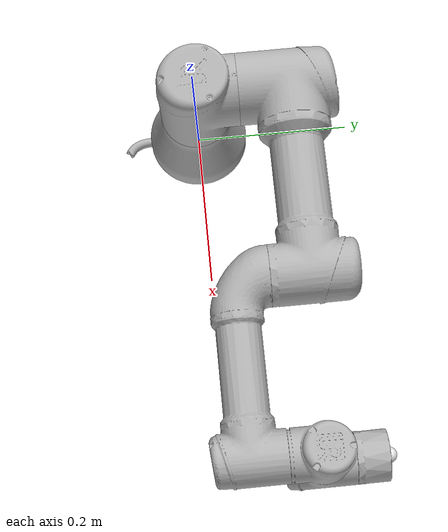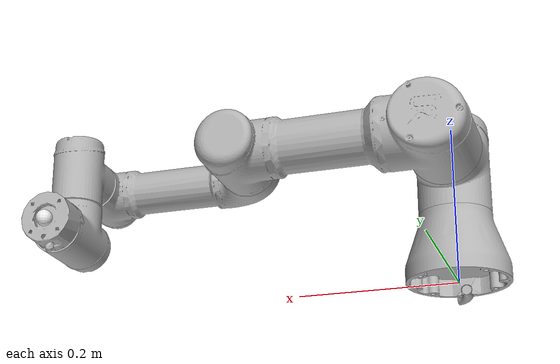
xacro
<?xml version="1.0"?>
<robot xmlns:controller="http://playerstage.sourceforge.net/gazebo/xmlschema/#controller"
        xmlns:interface="http://playerstage.sourceforge.net/gazebo/xmlschema/#interface"
        xmlns:xacro="http://wiki.ros.org/xacro"
        xmlns:sensor="http://playerstage.sourceforge.net/gazebo/xmlschema/#sensor"
        name="MiR200_UR5">

    <xacro:arg name="robot_name" default=''/>
    <xacro:arg name="tf_prefix" default=''/>
    <xacro:arg name="robot_namespace" default=''/>
    <xacro:arg name="transmission_hw_interface1" default="hardware_interface/PositionJointInterface"/>
    <xacro:arg name="transmission_hw_interface2" default="hardware_interface/VelocityJointInterface"/>

    <!--Include all needed urdf files-->

    <xacro:include filename="$(find cartesian_controller_examples)/urdf/ur5_robot.urdf.xacro">
        <xacro:arg name="tf_prefix" value="$(arg tf_prefix)"/>
    </xacro:include>

    <!--The position of the model was measured using laser scachild_frame="$(arg tf_prefix)wrist_3_link_ur5" nner. See Florian's master thesis-->

    <!--add force_torque sensor-->

    <!--Link to Gazebo library-->

   <!-- old -->
   <!-- new -->

    <gazebo>
      <plugin name="gazebo_ros_control" filename="libhwi_switch_gazebo_ros_control.so">
        <!--will be global namespace when not specified-->
        <controlPeriod>0.001</controlPeriod>
        <legacyModeNS>true</legacyModeNS>
      </plugin>
    </gazebo>

</robot>

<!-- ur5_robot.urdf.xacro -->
<!-- This file is needed so the moveit configurator is able to use the robot only (because the "xacro:ur5_robot" is searched) -->
<robot xmlns:xacro="http://wiki.ros.org/xacro"
       name="ur5" >

  <xacro:arg name="transmission_hw_interface1" default="hardware_interface/PositionJointInterface"/>
  <xacro:arg name="transmission_hw_interface2" default="hardware_interface/VelocityJointInterface"/>
  <xacro:arg name="tf_prefix" default=''/>

  <!-- common stuff -->

  <!-- include of the xacro file -->
  <xacro:include filename="$(find cartesian_controller_examples)/urdf/ur3.urdf.xacro" />

  <!-- arm -->
  <xacro:ur3_robot prefix="$(arg tf_prefix)" joint_limited="true" transmission_hw_interface1="$(arg transmission_hw_interface1)" transmission_hw_interface2="$(arg transmission_hw_interface2)"/>

</robot>

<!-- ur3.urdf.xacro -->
<robot xmlns:xacro="http://wiki.ros.org/xacro">

<!--
  Author: Felix Messmer
-->
 <xacro:include filename="$(find cartesian_controller_examples)/urdf/ur.transmission_switch.xacro" />
  <xacro:include filename="$(find cartesian_controller_examples)/urdf/ur.gazebo.xacro" />

   <xacro:macro name="cylinder_inertial" params="radius length mass *origin">
    <inertial>
      <mass value="${mass}" />
      <xacro:insert_block name="origin" />
      <inertia ixx="${0.0833333 * mass * (3 * radius * radius + length * length)}" ixy="0.0" ixz="0.0"
        iyy="${0.0833333 * mass * (3 * radius * radius + length * length)}" iyz="0.0"
        izz="${0.5 * mass * radius * radius}" />
    </inertial>
  </xacro:macro>

  <xacro:macro name="ur3_robot" params="prefix joint_limited
    shoulder_pan_lower_limit:=${-pi}    shoulder_pan_upper_limit:=${pi}
    shoulder_lift_lower_limit:=${-pi}    shoulder_lift_upper_limit:=${pi}
    elbow_joint_lower_limit:=${-pi}    elbow_joint_upper_limit:=${pi}
    wrist_1_lower_limit:=${-pi}    wrist_1_upper_limit:=${pi}
    wrist_2_lower_limit:=${-pi}    wrist_2_upper_limit:=${pi}
    wrist_3_lower_limit:=${-pi}    wrist_3_upper_limit:=${pi}
    transmission_hw_interface1:=hardware_interface/PositionJointInterface
    transmission_hw_interface2:=hardware_interface/VelocityJointInterface
    safety_limits:=false safety_pos_margin:=0.15
    safety_k_position:=20">

    <!-- Inertia parameters -->
    <xacro:property name="base_mass" value="2.0" />  <!-- This mass might be incorrect -->
    <xacro:property name="shoulder_mass" value="2.0" />
    <xacro:property name="upper_arm_mass" value="3.42" />
    <xacro:property name="forearm_mass" value="1.26" />
    <xacro:property name="wrist_1_mass" value="0.8" />
    <xacro:property name="wrist_2_mass" value="0.8" />
    <xacro:property name="wrist_3_mass" value="0.35" />

    <xacro:property name="shoulder_cog" value="0.0 -0.02 0.0" />
    <xacro:property name="upper_arm_cog" value="0.13 0.0 0.1157" />
    <xacro:property name="forearm_cog" value="0.05 0.0 0.0238" />
    <xacro:property name="wrist_1_cog" value="0.0 0.0 0.01" />
    <xacro:property name="wrist_2_cog" value="0.0 0.0 0.01" />
    <xacro:property name="wrist_3_cog" value="0.0 0.0 -0.02" />

    <!-- Kinematic model -->
    <!-- Properties from urcontrol.conf -->
    <xacro:property name="d1" value="0.1519" />
    <xacro:property name="a2" value="-0.24365" />
    <xacro:property name="a3" value="-0.21325" />
    <xacro:property name="d4" value="0.11235" />
    <xacro:property name="d5" value="0.08535" />
    <xacro:property name="d6" value="0.0819" />

    <!-- Arbitrary offsets for shoulder/elbow joints -->
    <xacro:property name="shoulder_offset" value="0.1198" />  <!-- measured from model -->
    <xacro:property name="elbow_offset" value="-0.0925" /> <!-- measured from model -->

    <!-- link lengths used in model -->
    <xacro:property name="shoulder_height" value="${d1}" />
    <xacro:property name="upper_arm_length" value="${-a2}" />
    <xacro:property name="forearm_length" value="${-a3}" />
    <xacro:property name="wrist_1_length" value="${d4 - elbow_offset - shoulder_offset}" />
    <xacro:property name="wrist_2_length" value="${d5}" />
    <xacro:property name="wrist_3_length" value="${d6}" />

    <link name="${prefix}base_link" >
      <visual>
        <geometry>
          <mesh filename="package://ur_description/meshes/ur3/visual/base.dae"/>
        </geometry>
        <material name="LightGrey">
          <color rgba="0.7 0.7 0.7 1.0"/>
        </material>
      </visual>
      <collision>
        <geometry>
          <mesh filename="package://ur_description/meshes/ur3/collision/base.stl"/>
        </geometry>
      </collision>
      <xacro:cylinder_inertial radius="0.075" length="0.038" mass="${base_mass}">
        <origin xyz="0.0 0.0 0.0" rpy="0 0 0" />
      </xacro:cylinder_inertial>
    </link>

    <joint name="${prefix}shoulder_pan_joint" type="revolute">
      <parent link="${prefix}base_link" />
      <child link = "${prefix}shoulder_link" />
      <origin xyz="0.0 0.0 ${shoulder_height}" rpy="0.0 0.0 0.0" />
      <axis xyz="0 0 1" />
      <xacro:unless value="${joint_limited}">
        <limit lower="${-2.0 * pi}" upper="${2.0 * pi}" effort="330.0" velocity="2.16"/>
        <xacro:if value="${safety_limits}">
          <safety_controller soft_lower_limit="${-2.0 * pi + safety_pos_margin}" soft_upper_limit="${2.0 * pi - safety_pos_margin}" k_position="${safety_k_position}" k_velocity="0.0"/>
        </xacro:if>
      </xacro:unless>
      <xacro:if value="${joint_limited}">
        <limit lower="${shoulder_pan_lower_limit}" upper="${shoulder_pan_upper_limit}" effort="330.0" velocity="2.16"/>
        <xacro:if value="${safety_limits}">
          <safety_controller soft_lower_limit="${shoulder_pan_lower_limit + safety_pos_margin}" soft_upper_limit="${shoulder_pan_upper_limit - safety_pos_margin}" k_position="${safety_k_position}" k_velocity="0.0"/>
        </xacro:if>
      </xacro:if>
      <dynamics damping="0.0" friction="0.0"/>
    </joint>

    <link name="${prefix}shoulder_link">
      <visual>
        <geometry>
          <mesh filename="package://ur_description/meshes/ur3/visual/shoulder.dae"/>
        </geometry>
        <material name="LightGrey">
          <color rgba="0.7 0.7 0.7 1.0"/>
        </material>
      </visual>
      <collision>
        <geometry>
          <mesh filename="package://ur_description/meshes/ur3/collision/shoulder.stl"/>
        </geometry>
      </collision>
      <xacro:cylinder_inertial radius="0.075" length="0.178" mass="${shoulder_mass}">
        <origin xyz="0.0 0.0 0.0" rpy="0 0 0" />
      </xacro:cylinder_inertial>
    </link>

    <joint name="${prefix}shoulder_lift_joint" type="revolute">
      <parent link="${prefix}shoulder_link" />
      <child link = "${prefix}upper_arm_link" />
      <origin xyz="0.0 ${shoulder_offset} 0.0" rpy="0.0 ${pi / 2.0} 0.0" />
      <axis xyz="0 1 0" />
      <xacro:unless value="${joint_limited}">
        <limit lower="${-2.0 * pi}" upper="${2.0 * pi}" effort="330.0" velocity="2.16"/>
        <xacro:if value="${safety_limits}">
          <safety_controller soft_lower_limit="${-2.0 * pi + safety_pos_margin}" soft_upper_limit="${2.0 * pi - safety_pos_margin}" k_position="${safety_k_position}" k_velocity="0.0"/>
        </xacro:if>
      </xacro:unless>
      <xacro:if value="${joint_limited}">
        <limit lower="${shoulder_lift_lower_limit}" upper="${shoulder_lift_upper_limit}" effort="330.0" velocity="2.16"/>
        <xacro:if value="${safety_limits}">
          <safety_controller soft_lower_limit="${shoulder_lift_lower_limit + safety_pos_margin}" soft_upper_limit="${shoulder_lift_upper_limit - safety_pos_margin}" k_position="${safety_k_position}" k_velocity="0.0"/>
        </xacro:if>
      </xacro:if>
      <dynamics damping="0.0" friction="0.0"/>
    </joint>

    <link name="${prefix}upper_arm_link">
      <visual>
        <geometry>
          <mesh filename="package://ur_description/meshes/ur3/visual/upperarm.dae"/>
        </geometry>
        <material name="LightGrey">
          <color rgba="0.7 0.7 0.7 1.0"/>
        </material>
      </visual>
      <collision>
        <geometry>
          <mesh filename="package://ur_description/meshes/ur3/collision/upperarm.stl"/>
        </geometry>
      </collision>
      <xacro:cylinder_inertial radius="0.075" length="${-a2}" mass="${upper_arm_mass}">
        <origin xyz="0.0 0.0 ${-a2/2.0}" rpy="0 0 0" />
      </xacro:cylinder_inertial>
    </link>

    <joint name="${prefix}elbow_joint" type="revolute">
      <parent link="${prefix}upper_arm_link" />
      <child link = "${prefix}forearm_link" />
      <origin xyz="0.0 ${elbow_offset} ${upper_arm_length}" rpy="0.0 0.0 0.0" />
      <axis xyz="0 1 0" />
      <xacro:unless value="${joint_limited}">
        <limit lower="${-pi}" upper="${pi}" effort="150.0" velocity="3.15"/>
        <xacro:if value="${safety_limits}">
          <safety_controller soft_lower_limit="${-2.0 * pi + safety_pos_margin}" soft_upper_limit="${2.0 * pi - safety_pos_margin}" k_position="${safety_k_position}" k_velocity="0.0"/>
        </xacro:if>
      </xacro:unless>
      <xacro:if value="${joint_limited}">
        <limit lower="${elbow_joint_lower_limit}" upper="${elbow_joint_upper_limit}" effort="150.0" velocity="3.15"/>
        <xacro:if value="${safety_limits}">
          <safety_controller soft_lower_limit="${elbow_joint_lower_limit + safety_pos_margin}" soft_upper_limit="${elbow_joint_upper_limit - safety_pos_margin}" k_position="${safety_k_position}" k_velocity="0.0"/>
        </xacro:if>
      </xacro:if>
      <dynamics damping="0.0" friction="0.0"/>
    </joint>

    <link name="${prefix}forearm_link">
      <visual>
         <geometry>
          <mesh filename="package://ur_description/meshes/ur3/visual/forearm.dae"/>
        </geometry>
        <material name="LightGrey">
          <color rgba="0.7 0.7 0.7 1.0"/>
        </material>
      </visual>
      <collision>
        <geometry>
          <mesh filename="package://ur_description/meshes/ur3/collision/forearm.stl"/>
        </geometry>
      </collision>
      <xacro:cylinder_inertial radius="0.075" length="${-a3}" mass="${forearm_mass}">
        <origin xyz="0.0 0.0 ${-a3/2.0}" rpy="0 0 0" />
      </xacro:cylinder_inertial>
    </link>

    <joint name="${prefix}wrist_1_joint" type="revolute">
      <parent link="${prefix}forearm_link" />
      <child link = "${prefix}wrist_1_link" />
      <origin xyz="0.0 0.0 ${forearm_length}" rpy="0.0 ${pi / 2.0} 0.0" />
      <axis xyz="0 1 0" />
      <xacro:unless value="${joint_limited}">
        <limit lower="${-2.0 * pi}" upper="${2.0 * pi}" effort="54.0" velocity="3.2"/>
        <xacro:if value="${safety_limits}">
          <safety_controller soft_lower_limit="${-2.0 * pi + safety_pos_margin}" soft_upper_limit="${2.0 * pi - safety_pos_margin}" k_position="${safety_k_position}" k_velocity="0.0"/>
        </xacro:if>
      </xacro:unless>
      <xacro:if value="${joint_limited}">
        <limit lower="${wrist_1_lower_limit}" upper="${wrist_1_upper_limit}" effort="54.0" velocity="3.2"/>
        <xacro:if value="${safety_limits}">
          <safety_controller soft_lower_limit="${wrist_1_lower_limit + safety_pos_margin}" soft_upper_limit="${wrist_1_upper_limit - safety_pos_margin}" k_position="${safety_k_position}" k_velocity="0.0"/>
        </xacro:if>
      </xacro:if>
      <dynamics damping="0.0" friction="0.0"/>
    </joint>

    <link name="${prefix}wrist_1_link">
      <visual>
        <geometry>
          <mesh filename="package://ur_description/meshes/ur3/visual/wrist1.dae"/>
        </geometry>
        <material name="LightGrey">
          <color rgba="0.7 0.7 0.7 1.0"/>
        </material>
      </visual>
      <collision>
        <geometry>
          <mesh filename="package://ur_description/meshes/ur3/collision/wrist1.stl"/>
        </geometry>
      </collision>
      <xacro:cylinder_inertial radius="0.075" length="0.12" mass="${wrist_1_mass}">
        <origin xyz="0.0 ${wrist_1_length} 0.0" rpy="0 0 0" />
      </xacro:cylinder_inertial>
    </link>

    <joint name="${prefix}wrist_2_joint" type="revolute">
      <parent link="${prefix}wrist_1_link" />
      <child link = "${prefix}wrist_2_link" />
      <origin xyz="0.0 ${wrist_1_length} 0.0" rpy="0.0 0.0 0.0" />
      <axis xyz="0 0 1" />
      <xacro:unless value="${joint_limited}">
        <limit lower="${-2.0 * pi}" upper="${2.0 * pi}" effort="54.0" velocity="3.2"/>
        <xacro:if value="${safety_limits}">
          <safety_controller soft_lower_limit="${-2.0 * pi + safety_pos_margin}" soft_upper_limit="${2.0 * pi - safety_pos_margin}" k_position="${safety_k_position}" k_velocity="0.0"/>
        </xacro:if>
      </xacro:unless>
      <xacro:if value="${joint_limited}">
        <limit lower="${wrist_2_lower_limit}" upper="${wrist_2_upper_limit}" effort="54.0" velocity="3.2"/>
        <xacro:if value="${safety_limits}">
          <safety_controller soft_lower_limit="${wrist_2_lower_limit + safety_pos_margin}" soft_upper_limit="${wrist_2_upper_limit - safety_pos_margin}" k_position="${safety_k_position}" k_velocity="0.0"/>
        </xacro:if>
      </xacro:if>
      <dynamics damping="0.0" friction="0.0"/>
    </joint>

    <link name="${prefix}wrist_2_link">
      <visual>
        <geometry>
          <mesh filename="package://ur_description/meshes/ur3/visual/wrist2.dae"/>
        </geometry>
        <material name="LightGrey">
          <color rgba="0.7 0.7 0.7 1.0"/>
        </material>
      </visual>
      <collision>
        <geometry>
          <mesh filename="package://ur_description/meshes/ur3/collision/wrist2.stl"/>
        </geometry>
      </collision>
      <xacro:cylinder_inertial radius="0.075" length="0.12" mass="${wrist_2_mass}">
        <origin xyz="0.0 0.0 ${wrist_2_length}" rpy="0 0 0" />
      </xacro:cylinder_inertial>
    </link>

    <joint name="${prefix}wrist_3_joint" type="revolute">
      <parent link="${prefix}wrist_2_link" />
      <child link = "${prefix}wrist_3_link" />
      <origin xyz="0.0 0.0 ${wrist_2_length}" rpy="0.0 0.0 0.0" />
      <axis xyz="0 1 0" />
      <xacro:unless value="${joint_limited}">
        <limit lower="${-2.0 * pi}" upper="${2.0 * pi}" effort="54.0" velocity="3.2"/>
        <xacro:if value="${safety_limits}">
          <safety_controller soft_lower_limit="${-2.0 * pi + safety_pos_margin}" soft_upper_limit="${2.0 * pi - safety_pos_margin}" k_position="${safety_k_position}" k_velocity="0.0"/>
        </xacro:if>
      </xacro:unless>
      <xacro:if value="${joint_limited}">
        <limit lower="${wrist_3_lower_limit}" upper="${wrist_3_upper_limit}" effort="54.0" velocity="3.2"/>
        <xacro:if value="${safety_limits}">
          <safety_controller soft_lower_limit="${wrist_3_lower_limit + safety_pos_margin}" soft_upper_limit="${wrist_3_upper_limit - safety_pos_margin}" k_position="${safety_k_position}" k_velocity="0.0"/>
        </xacro:if>
      </xacro:if>
      <dynamics damping="0.0" friction="0.0"/>
    </joint>

    <link name="${prefix}wrist_3_link">
      <visual>
        <geometry>
          <mesh filename="package://ur_description/meshes/ur3/visual/wrist3.dae"/>
        </geometry>
        <material name="LightGrey">
          <color rgba="0.7 0.7 0.7 1.0"/>
        </material>
      </visual>
      <collision>
        <geometry>
          <mesh filename="package://ur_description/meshes/ur3/collision/wrist3.stl"/>
        </geometry>
      </collision>
      <xacro:cylinder_inertial radius="0.032" length="0.04" mass="${wrist_3_mass}">
        <origin xyz="0.0 ${wrist_3_length - 0.02} 0.0" rpy="${pi/2} 0 0" />
      </xacro:cylinder_inertial>
    </link>

   <gazebo reference="${prefix}wrist_3_link">
      <kp value="0.0"/> <!--stiffness coefficient-->
      <kd value="1.0"/> <!--dampening coefficient  old: 0.0-->
      <minDepth value="0.2"/>
      <maxVel value="0"/>
    </gazebo>

    <joint name="${prefix}ee_fixed_joint" type="fixed">
      <parent link="${prefix}wrist_3_link" />
      <child link = "${prefix}ee_link" />
      <origin xyz="0.0 ${wrist_3_length} 0.0" rpy="0.0 0.0 ${pi/2.0}" />
    </joint>

    <link name="${prefix}ee_link">
      <visual>
	      <origin rpy="0 0 0" xyz="0 0 0"/>
	      <geometry>
          <sphere radius="0.01"/>
        </geometry>
        <material name="white"/>
      </visual>
      <collision>
        <geometry>
          <box size="0.01 0.01 0.01"/>
        </geometry>
      </collision>
    </link>

    <gazebo reference="${prefix}ee_link">
      <kp value="0.0"/> <!--stiffness-->
      <kd value="1.0"/> <!--damping-->
      <minDepth value="0.2"/>
      <maxVel value="0"/>
    </gazebo>

    <xacro:ur_arm_transmission_switch prefix="${prefix}" hw_interface1="${transmission_hw_interface1}" hw_interface2="${transmission_hw_interface2}" />
    <xacro:ur_arm_gazebo prefix="${prefix}" />

    <!-- ROS base_link to UR 'Base' Coordinates transform -->
    <link name="${prefix}base"/>
    <joint name="${prefix}base_link-base_fixed_joint" type="fixed">
      <!-- NOTE: this rotation is only needed as long as base_link itself is
                 not corrected wrt the real robot (ie: rotated over 180
                 degrees)
      -->
      <origin xyz="0 0 0" rpy="0 0 ${-pi}"/>
      <parent link="${prefix}base_link"/>
      <child link="${prefix}base"/>
    </joint>

    <!-- Frame coincident with all-zeros TCP on UR controller -->

 <!-- Attach a sensor link -->

  </xacro:macro>
</robot>
